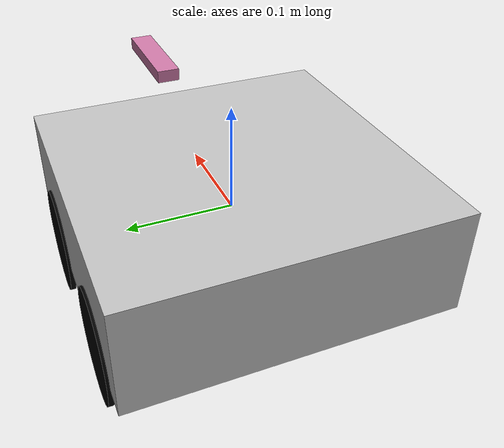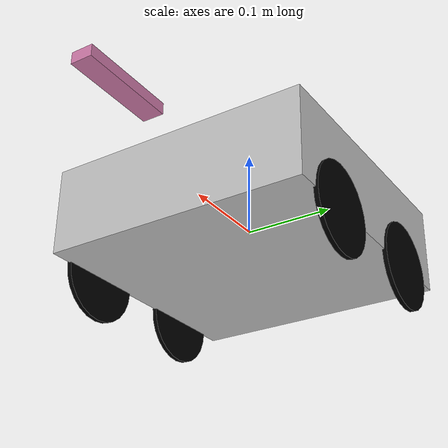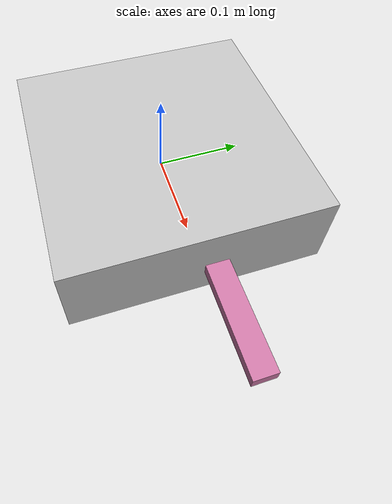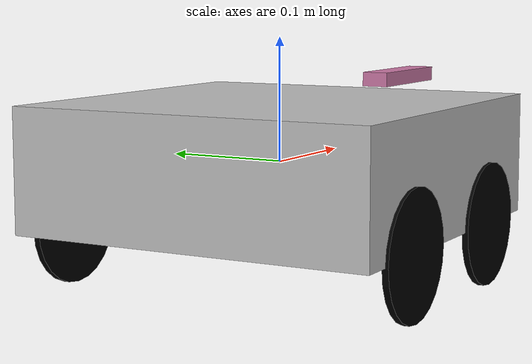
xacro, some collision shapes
<?xml version="1.0" ?>
<robot name="ros_control_car" xmlns:xacro="http://ros.org/wiki/xacro">
    <xacro:include filename="$(find car)/urdf/car.urdf.xacro" />
    <xacro:include filename="$(find car)/urdf/sensors/realsense/tracker.xacro"/>

  <xacro:realsense_T265 sensor_name="camera" parent_link="base_link" rate="10.0">
    <origin rpy="1.57 1.57 0" xyz="0.235 0 0.055"/>
  </xacro:realsense_T265>

    <gazebo>
        <plugin name="car_controller" filename="libgazebo_ros_skid_steer_drive.so">
            <updateRate>30.0</updateRate>
            <robotNamespace>/</robotNamespace>
            <leftFrontJoint>front_left_wheel_joint</leftFrontJoint>
            <rightFrontJoint>front_right_wheel_joint</rightFrontJoint>
            <leftRearJoint>back_left_wheel_joint</leftRearJoint>
            <rightRearJoint>back_right_wheel_joint</rightRearJoint>
            <wheelSeparation>0.3</wheelSeparation>
            <wheelDiameter>0.1</wheelDiameter>
            <robotBaseFrame>base_link</robotBaseFrame>
            <torque>20</torque>
            <topicName>cmd_vel</topicName>
            <broadcastTF>false</broadcastTF>
        </plugin>
    </gazebo>

</robot>

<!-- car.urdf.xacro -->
<robot name="car" xmlns:xacro="http://ros.org/wiki/xacro">

    <link name="base_link">

        <inertial>
            <mass value="1.0"/>
            <inertia ixx="0.0009375" iyy="0.0009375" izz="0.015" ixy="0" ixz="0" iyz="0"/>
        </inertial>

        <collision>

            <geometry>
                <box size="0.3 0.3 0.1"/>
            </geometry>

        </collision>

        <visual>
            <geometry>
                <box size="0.3 0.3 0.1"/>
            </geometry>

            <material name="silver">
                <color rgba="0.75 0.75 0.75 1"/>
            </material>
        </visual>

    </link>

    <link name="front_right_wheel">

        <inertial>
            <mass value="0.1"/>
            <inertia ixx="6.2708e-5" iyy="6.2708e-5" izz="0.000125" ixy="0" ixz="0" iyz="0"/>
        </inertial>
        <collision>
            <geometry>
                <cylinder length="0.005" radius="0.05"/>
            </geometry>
        </collision>

        <visual>
            <geometry>
                <cylinder length="0.005" radius="0.05"/>
            </geometry>
            <material name="black">
                <color rgba="0 0 0 1"/>
            </material>
        </visual>
    </link>

    <joint name="front_right_wheel_joint" type="continuous">
        <axis xyz="0 0 1"/>
        <parent link="base_link"/>
        <child link="front_right_wheel"/>
        <origin rpy="-1.5708 0 0" xyz="0.075 -0.15 -.05"/>
    </joint>

    <link name="front_left_wheel">
         <inertial>
            <mass value="0.1"/>
            <inertia ixx="6.2708e-5" iyy="6.2708e-5" izz="0.000125" ixy="0" ixz="0" iyz="0"/>
        </inertial>
        <collision>
            <geometry>
                <cylinder length="0.005" radius="0.05"/>
            </geometry>
        </collision>

        <visual>
            <geometry>
                <cylinder length="0.005" radius="0.05"/>
            </geometry>
            <material name="black"/>
        </visual>
    </link>

    <joint name="front_left_wheel_joint" type="continuous">
        <axis xyz="0 0 1"/>
        <parent link="base_link"/>
        <child link="front_left_wheel"/>
        <origin rpy="-1.5708 0 0" xyz="0.075 0.15 -.05"/>
    </joint>

    <link name="back_right_wheel">
         <inertial>
            <mass value="0.1"/>
            <inertia ixx="6.2708e-5" iyy="6.2708e-5" izz="0.000125" ixy="0" ixz="0" iyz="0"/>
        </inertial>
        <collision>
            <geometry>
                <cylinder length="0.005" radius="0.05"/>
            </geometry>
        </collision>

        <visual>
            <geometry>
                <cylinder length="0.005" radius="0.05"/>
            </geometry>
            <material name="black">
                <color rgba="0 0 0 1"/>
            </material>
        </visual>
    </link>

    <joint name="back_right_wheel_joint" type="continuous">
        <axis xyz="0 0 1"/>
        <parent link="base_link"/>
        <child link="back_right_wheel"/>
        <origin rpy="-1.5708 0 0" xyz="-0.075 -0.15 -.05"/>
    </joint>

    <link name="back_left_wheel">
        <inertial>
            <mass value="0.1"/>
            <inertia ixx="6.2708e-5" iyy="6.2708e-5" izz="0.000125" ixy="0" ixz="0" iyz="0"/>
        </inertial>
        <collision>
            <geometry>
                <cylinder length="0.005" radius="0.05"/>
            </geometry>
        </collision>

        <visual>
            <geometry>
                <cylinder length="0.005" radius="0.05"/>
            </geometry>
            <material name="black"/>
        </visual>
    </link>

    <joint name="back_left_wheel_joint" type="continuous">
        <axis xyz="0 0 1"/>
        <parent link="base_link"/>
        <child link="back_left_wheel"/>
        <origin rpy="-1.5708 0 0" xyz="-0.075 0.15 -.05"/>
    </joint>

    <!-- gazebo -->
    <gazebo reference="base_link">
        <material>Gazebo/Grey</material>
        <mu1>0.1</mu1>
        <mu2>0.1</mu2>
    </gazebo>
    <gazebo reference="back_left_wheel">
        <material>Gazebo/Black</material>
        <mu1>0.1</mu1>
        <mu2>0.1</mu2>
    </gazebo>
    <gazebo reference="back_right_wheel">
        <material>Gazebo/Black</material>
        <mu1>0.1</mu1>
        <mu2>0.1</mu2>
    </gazebo>
    <gazebo reference="front_left_wheel">
        <material>Gazebo/Black</material>
        <mu1>0.1</mu1>
        <mu2>0.1</mu2>
    </gazebo>
    <gazebo reference="front_right_wheel">
        <material>Gazebo/Black</material>
        <mu1>0.1</mu1>
        <mu2>0.1</mu2>
    </gazebo>

</robot>

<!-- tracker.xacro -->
<robot xmlns:xacro="http://www.ros.org/wiki/xacro">

  <xacro:macro name="T265_fisheye" params="sensor_name reference_frame topic rate">
    <gazebo reference="${reference_frame}">
      <sensor name="camera" type="wideanglecamera">
        <camera>
          <horizontal_fov>6.283</horizontal_fov>
          <image>
            <width>800</width>
            <height>848</height>
          </image>
          <clip>
            <near>0.1</near>
            <far>100</far>
          </clip>
          <lens>
            <type>custom</type>
            <custom_function>
              <c1>1.05</c1>
              <c2>4</c2>
              <f>1.0</f>
              <fun>tan</fun>
            </custom_function>
            <scale_to_hfov>true</scale_to_hfov>
            <cutoff_angle>3.1415</cutoff_angle>
            <env_texture_size>512</env_texture_size>
          </lens>
          <always_on>true</always_on>
          <update_rate>30</update_rate>
        </camera>
        <plugin name="camera_controller" filename="libgazebo_ros_camera.so">
          <alwaysOn>true</alwaysOn>
          <updateRate>${rate}</updateRate>
          <cameraName>${sensor_name}/${topic}</cameraName>
          <imageTopicName>image_raw</imageTopicName>
          <cameraInfoTopicName>camera_info</cameraInfoTopicName>
          <frameName>${reference_frame}</frameName>
          <hackBaseline>0.07</hackBaseline>
          <distortionK1>-0.007419134024530649</distortionK1>
          <distortionK2>0.041209351271390915</distortionK2>
          <distortionK3>-0.03811917081475258</distortionK3>
          <distortionT1>0.006366158835589886</distortionT1>
          <distortionT2>0.0</distortionT2>
          <CxPrime>416.00531005859375</CxPrime>
          <Cx>16.00531005859375</Cx>
          <Cy>403.38909912109375</Cy>
        </plugin>
      </sensor>
    </gazebo>
  </xacro:macro>

  <!-- INTEL REALSENSE T265 -->

  <xacro:macro name="realsense_T265" params="sensor_name parent_link rate *origin">

    <joint name="${sensor_name}_odom_frame_joint" type="fixed">
        <parent link="${parent_link}"/>
        <child link="${sensor_name}_odom_frame"/>
        <xacro:insert_block name="origin"/>
    </joint>

    <joint name="${sensor_name}_pose_frame_joint" type="fixed">
        <parent link="${sensor_name}_odom_frame"/>
        <child link="${sensor_name}_pose_frame"/>
        <origin rpy="0 0 0" xyz="0 0 0"/> <!-- check on real hw -->
    </joint>
    <link name="${sensor_name}_odom_frame"/>

    <link name="${sensor_name}_pose_frame">
        <visual>
            <origin rpy="1.57 0 1.57" xyz="0 0 0"/>
            <geometry>
                <mesh filename="/home/ahal/catkin_ws/src/car/urdf/sensors/realsense/meshes/realsense.dae"/>
            </geometry>
        </visual>
        <collision>
            <geometry>
                <box size="0.013 0.108 0.024"/>
            </geometry>
        </collision>
        <inertial>
            <mass value="0.055"/>
            <origin rpy="0 0 0" xyz="0 0 0"/>
            <inertia ixx="9.108e-05"
                     ixy="0"
                     ixz="0"
                     iyy="2.51e-06"
                     iyz="0"
                     izz="8.931e-05"/>
        </inertial>
    </link>

    <joint name="${sensor_name}_joint" type="fixed">
        <parent link="${sensor_name}_pose_frame"/>
        <child link="${sensor_name}_link"/>
        <origin rpy="0 0 0" xyz="0 0 0"/> <!-- check on real hw -->
    </joint>
    <link name="${sensor_name}_link"/>

    <joint name="${sensor_name}_fisheye1_joint" type="fixed">
        <parent link="${sensor_name}_link"/>
        <child link="${sensor_name}_fisheye1_frame"/>
        <origin rpy="0 0 0" xyz="0 0.042 0"/>
    </joint>
    <link name="${sensor_name}_fisheye1_frame"/>

    <joint name="${sensor_name}_fisheye1_optical_joint" type="fixed">
        <parent link="${sensor_name}_fisheye1_frame"/>
        <child link="${sensor_name}_fisheye1_optical_frame"/>
        <origin rpy="0 0 0" xyz="0.01 0 0"/>
    </joint>
    <link name="${sensor_name}_fisheye1_optical_frame"/>
    <xacro:T265_fisheye
      sensor_name="${sensor_name}"
      reference_frame="${sensor_name}_fisheye1_optical_frame"
      topic="fisheye1"
      rate="${rate}">
    </xacro:T265_fisheye>

    <joint name="${sensor_name}_fisheye2_joint" type="fixed">
        <parent link="${sensor_name}_link"/>
        <child link="${sensor_name}_fisheye2_frame"/>
        <origin rpy="0 0 0" xyz="0 -0.022 0"/>
    </joint>
    <link name="${sensor_name}_fisheye2_frame"/>

    <joint name="${sensor_name}_fisheye2_optical_joint" type="fixed">
        <parent link="${sensor_name}_fisheye2_frame"/>
        <child link="${sensor_name}_fisheye2_optical_frame"/>
        <origin rpy="0 0 0" xyz="0.01 0 0"/>
    </joint>
    <link name="${sensor_name}_fisheye2_optical_frame"/>
    <xacro:T265_fisheye
      sensor_name="${sensor_name}"
      reference_frame="${sensor_name}_fisheye2_optical_frame"
      topic="fisheye2"
      rate="${rate}">
    </xacro:T265_fisheye>

    <joint name="${sensor_name}_gyro_joint" type="fixed">
        <parent link="${sensor_name}_link"/>
        <child link="${sensor_name}_gyro_frame"/>
        <origin rpy="0 0 0" xyz="0 0 0"/> <!-- check on real hw -->
    </joint>
    <link name="${sensor_name}_gyro_frame"/>

    <gazebo reference="${sensor_name}_gyro_frame">
        <gravity>true</gravity>
        <sensor name="${sensor_name}_imu" type="imu">
            <always_on>true</always_on>
            <update_rate>${rate}</update_rate>
            <visualize>false</visualize>
            <plugin filename="libgazebo_ros_imu_sensor.so" name="imu_plugin">
                <topicName>${sensor_name}/gyro/sample</topicName>
                <bodyName>${sensor_name}_pose_frame</bodyName>
                <updateRateHZ>${rate}</updateRateHZ>
                <gaussianNoise>0.000001</gaussianNoise>
                <xyzOffset>0 0 0</xyzOffset>
                <rpyOffset>0 0 0</rpyOffset>
                <frameName>${sensor_name}_link</frameName>
            </plugin>
        </sensor>
    </gazebo>

    <joint name="${sensor_name}_accel_joint" type="fixed">
        <parent link="${sensor_name}_link"/>
        <child link="${sensor_name}_accel_frame"/>
        <origin rpy="0 0 0" xyz="0 0 0"/> <!-- check on real hw -->
    </joint>
    <link name="${sensor_name}_accel_frame"/> <!-- dummy -->

    <gazebo> <!-- odometry -->
        <plugin name="p3d_base_controller" filename="libgazebo_ros_p3d.so">
            <alwaysOn>true</alwaysOn>
            <updateRate>${rate}</updateRate>
            <bodyName>${sensor_name}_odom_frame</bodyName>
            <topicName>${sensor_name}/odom/sample</topicName>
            <gaussianNoise>0.001</gaussianNoise>
            <frameName>world</frameName>
            <xyzOffsets>0 0 0</xyzOffsets>
            <rpyOffsets>0 0 0</rpyOffsets>
        </plugin>
    </gazebo>

  </xacro:macro>

</robot>
